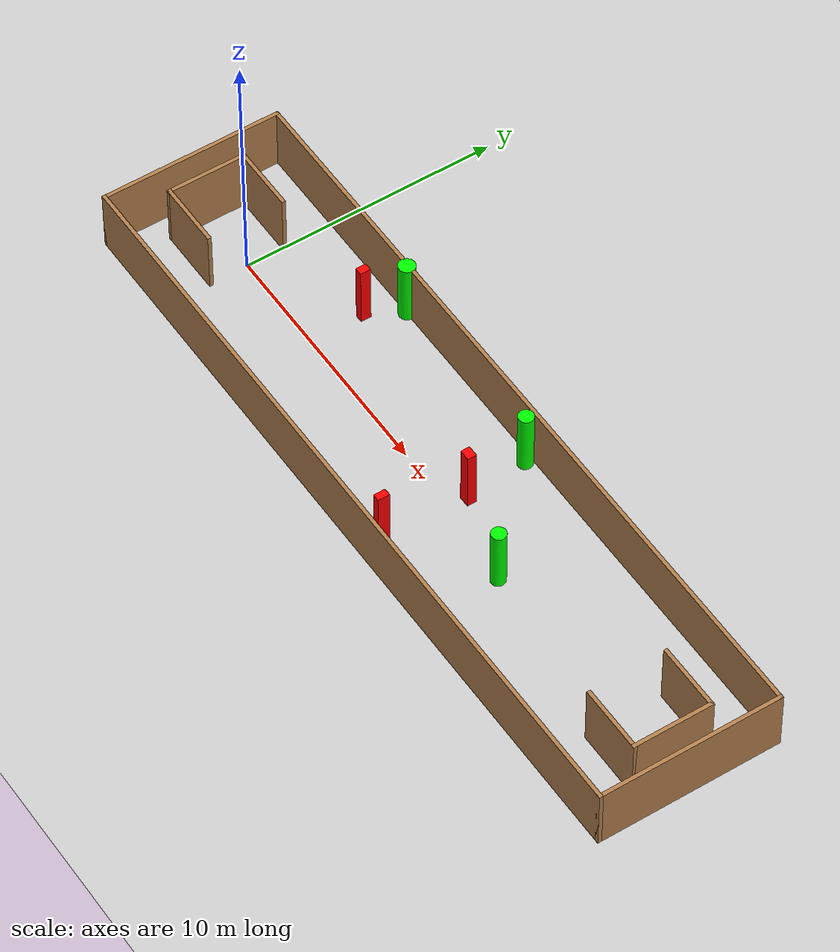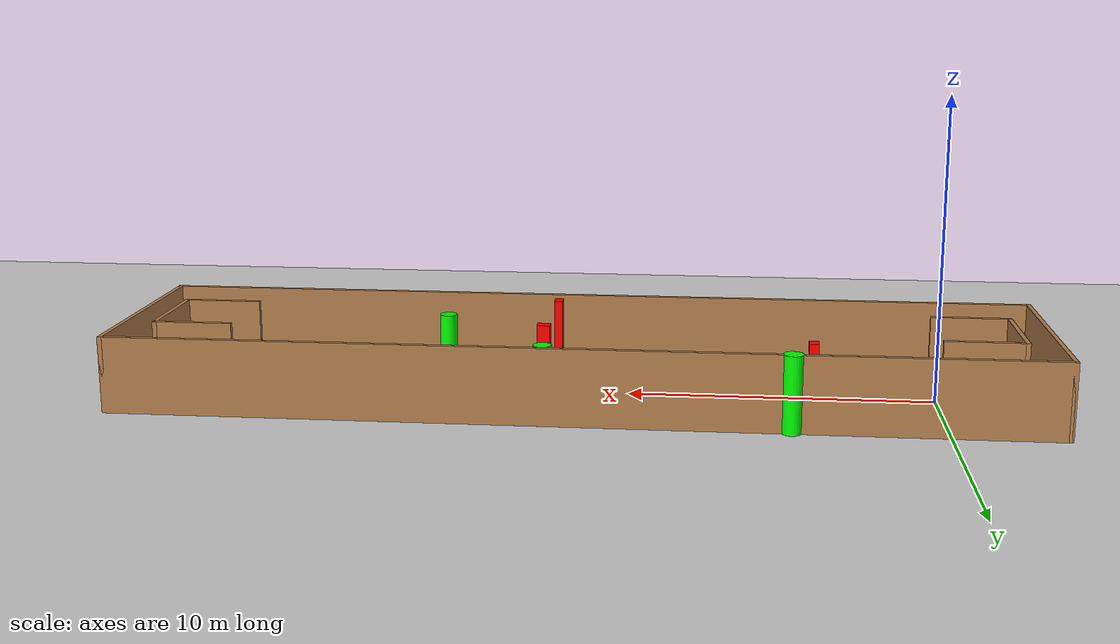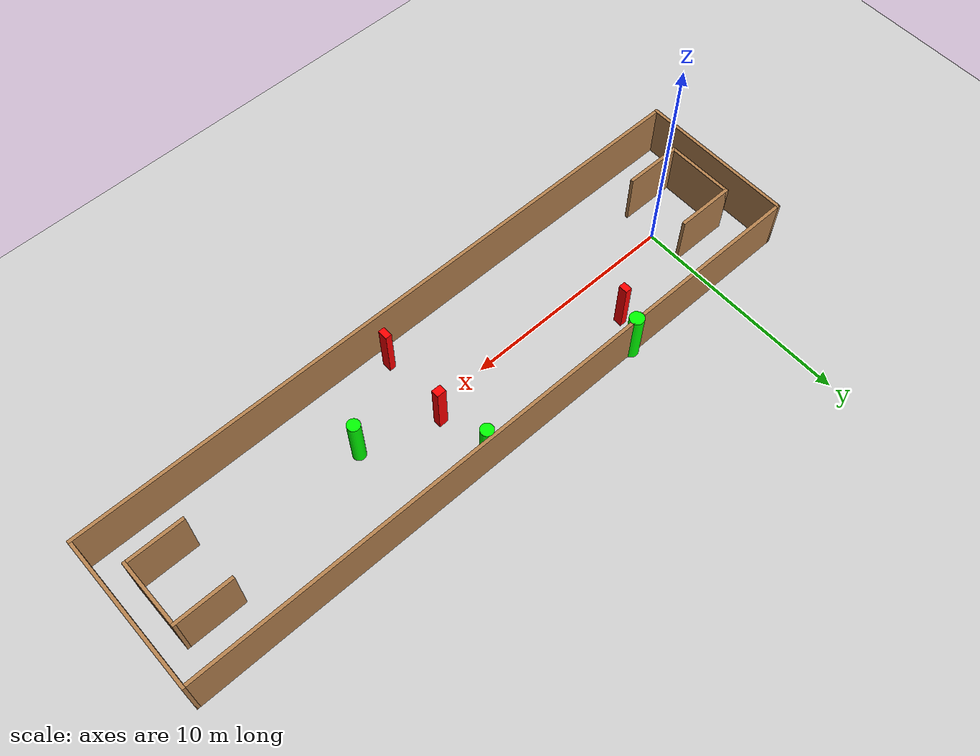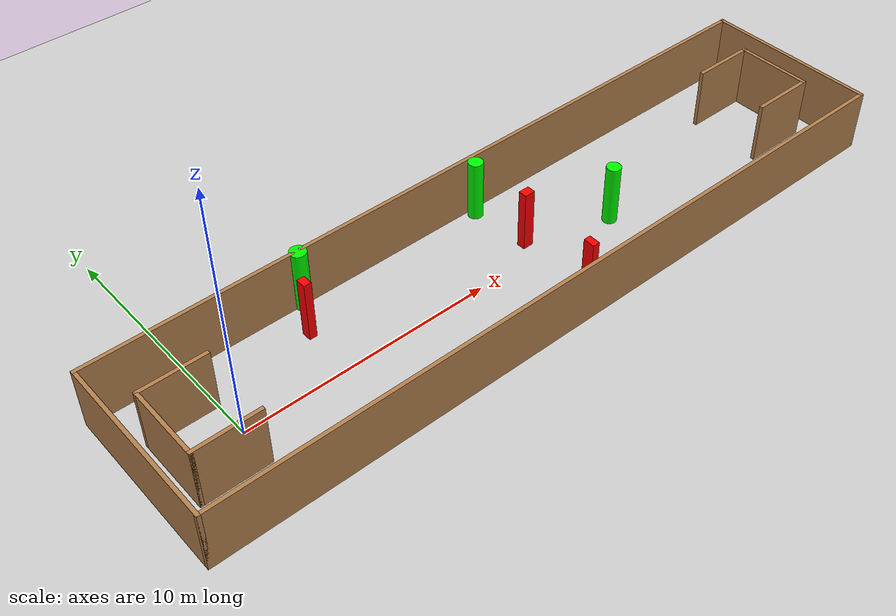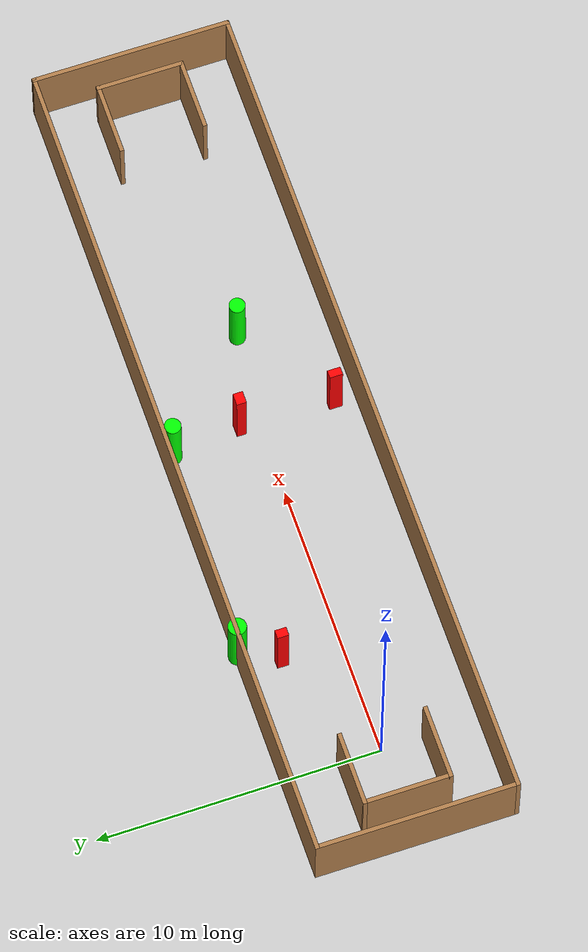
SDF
<sdf version="1.7">
 <world name="default">
  <light name="sun" type="directional">
   <pose>0 0 10 0 -0 0</pose>
   <diffuse>0.8 0.8 0.8 1</diffuse>
   <specular>0.2 0.2 0.2 1</specular>
   <attenuation>
    <range>1000</range>
    <constant>0.9</constant>
    <linear>0.01</linear>
    <quadratic>0.001</quadratic>
   </attenuation>
   <direction>-0.5 0.1 -0.9</direction>
   <spot><inner_angle>0</inner_angle><outer_angle>0</outer_angle><falloff>0</falloff></spot>
  </light>
  <model name="ground_plane">
   <static>1</static>
   <link name="link">
    <collision name="collision">
     <geometry><plane><normal>0 0 1</normal><size>100 100</size></plane></geometry>
     <surface>
      <contact><collide_bitmask>65535</collide_bitmask></contact>
      <friction><ode><mu>100</mu><mu2>50</mu2></ode></friction>
     </surface>
    </collision>
    <visual name="visual">
     <cast_shadows>0</cast_shadows>
     <geometry><plane><normal>0 0 1</normal><size>100 100</size></plane></geometry>
     <material>
      <script><uri>file://media/materials/scripts/gazebo.material</uri><name>Gazebo/Grey</name></script>
     </material>
    </visual>
   </link>
  </model>
  <gravity>0 0 -9.8</gravity>
  <magnetic_field>6e-06 2.3e-05 -4.2e-05</magnetic_field>
  <atmosphere type="adiabatic"/>
  <physics type="ode">
   <max_step_size>0.001</max_step_size>
   <real_time_factor>1</real_time_factor>
   <real_time_update_rate>1000</real_time_update_rate>
  </physics>
  <scene><ambient>0.4 0.4 0.4 1</ambient><background>0.7 0.7 0.7 1</background><shadows>1</shadows></scene>
  <spherical_coordinates>
   <surface_model>EARTH_WGS84</surface_model>
   <latitude_deg>0</latitude_deg>
   <longitude_deg>0</longitude_deg>
   <elevation>0</elevation>
   <heading_deg>0</heading_deg>
  </spherical_coordinates>
  <model name="my_base_walls">
   <link name="Wall_0">
    <collision name="Wall_0_Collision">
     <geometry><box><size>7.15 0.15 2.5</size></box></geometry>
     <pose>0 0 1.25 0 -0 0</pose>
    </collision>
    <visual name="Wall_0_Visual">
     <pose>0 0 1.25 0 -0 0</pose>
     <geometry><box><size>7.15 0.15 2.5</size></box></geometry>
     <material>
      <script><uri>file://media/materials/scripts/gazebo.material</uri><name>Gazebo/Wood</name></script>
      <ambient>1 1 1 1</ambient>
     </material>
     <meta><layer>0</layer></meta>
    </visual>
    <pose>-15 0 0 0 -0 1.5708</pose>
   </link>
   <link name="Wall_10">
    <collision name="Wall_10_Collision">
     <geometry><box><size>2.65 0.15 2.5</size></box></geometry>
     <pose>0 0 1.25 0 -0 0</pose>
    </collision>
    <visual name="Wall_10_Visual">
     <pose>0 0 1.25 0 -0 0</pose>
     <geometry><box><size>2.65 0.15 2.5</size></box></geometry>
     <material>
      <script><uri>file://media/materials/scripts/gazebo.material</uri><name>Gazebo/Wood</name></script>
      <ambient>1 1 1 1</ambient>
     </material>
     <meta><layer>0</layer></meta>
    </visual>
    <pose>-12.75 -1.5 0 0 -0 0</pose>
   </link>
   <link name="Wall_12">
    <collision name="Wall_12_Collision">
     <geometry><box><size>2.65 0.15 2.5</size></box></geometry>
     <pose>0 0 1.25 0 -0 0</pose>
    </collision>
    <visual name="Wall_12_Visual">
     <pose>0 0 1.25 0 -0 0</pose>
     <geometry><box><size>2.65 0.15 2.5</size></box></geometry>
     <material>
      <script><uri>file://media/materials/scripts/gazebo.material</uri><name>Gazebo/Wood</name></script>
      <ambient>1 1 1 1</ambient>
     </material>
     <meta><layer>0</layer></meta>
    </visual>
    <pose>-12.75 1.5 0 0 -0 0</pose>
   </link>
   <link name="Wall_14">
    <collision name="Wall_14_Collision">
     <geometry><box><size>3.15 0.15 2.5</size></box></geometry>
     <pose>0 0 1.25 0 -0 0</pose>
    </collision>
    <visual name="Wall_14_Visual">
     <pose>0 0 1.25 0 -0 0</pose>
     <geometry><box><size>3.15 0.15 2.5</size></box></geometry>
     <material>
      <script><uri>file://media/materials/scripts/gazebo.material</uri><name>Gazebo/Wood</name></script>
      <ambient>1 1 1 1</ambient>
     </material>
     <meta><layer>0</layer></meta>
    </visual>
    <pose>14 0 0 0 -0 -1.5708</pose>
   </link>
   <link name="Wall_15">
    <collision name="Wall_15_Collision">
     <geometry><box><size>2.65 0.15 2.5</size></box></geometry>
     <pose>0 0 1.25 0 -0 0</pose>
    </collision>
    <visual name="Wall_15_Visual">
     <pose>0 0 1.25 0 -0 0</pose>
     <geometry><box><size>2.65 0.15 2.5</size></box></geometry>
     <material>
      <script><uri>file://media/materials/scripts/gazebo.material</uri><name>Gazebo/Wood</name></script>
      <ambient>1 1 1 1</ambient>
     </material>
     <meta><layer>0</layer></meta>
    </visual>
    <pose>12.75 -1.5 0 0 -0 3.14159</pose>
   </link>
   <link name="Wall_17">
    <collision name="Wall_17_Collision">
     <geometry><box><size>2.65 0.15 2.5</size></box></geometry>
     <pose>0 0 1.25 0 -0 0</pose>
    </collision>
    <visual name="Wall_17_Visual">
     <pose>0 0 1.25 0 -0 0</pose>
     <geometry><box><size>2.65 0.15 2.5</size></box></geometry>
     <material>
      <script><uri>file://media/materials/scripts/gazebo.material</uri><name>Gazebo/Wood</name></script>
      <ambient>1 1 1 1</ambient>
     </material>
     <meta><layer>0</layer></meta>
    </visual>
    <pose>12.75 1.5 0 0 -0 3.14159</pose>
   </link>
   <link name="Wall_2">
    <collision name="Wall_2_Collision">
     <geometry><box><size>30.15 0.15 2.5</size></box></geometry>
     <pose>0 0 1.25 0 -0 0</pose>
    </collision>
    <visual name="Wall_2_Visual">
     <pose>0 0 1.25 0 -0 0</pose>
     <geometry><box><size>30.15 0.15 2.5</size></box></geometry>
     <material>
      <script><uri>file://media/materials/scripts/gazebo.material</uri><name>Gazebo/Wood</name></script>
      <ambient>1 1 1 1</ambient>
     </material>
     <meta><layer>0</layer></meta>
    </visual>
    <pose>-0 -3.5 0 0 -0 0</pose>
   </link>
   <link name="Wall_4">
    <collision name="Wall_4_Collision">
     <geometry><box><size>30.15 0.15 2.5</size></box></geometry>
     <pose>0 0 1.25 0 -0 0</pose>
    </collision>
    <visual name="Wall_4_Visual">
     <pose>0 0 1.25 0 -0 0</pose>
     <geometry><box><size>30.15 0.15 2.5</size></box></geometry>
     <material>
      <script><uri>file://media/materials/scripts/gazebo.material</uri><name>Gazebo/Wood</name></script>
      <ambient>1 1 1 1</ambient>
     </material>
     <meta><layer>0</layer></meta>
    </visual>
    <pose>-0 3.5 0 0 -0 0</pose>
   </link>
   <link name="Wall_6">
    <collision name="Wall_6_Collision">
     <geometry><box><size>7.15 0.15 2.5</size></box></geometry>
     <pose>0 0 1.25 0 -0 0</pose>
    </collision>
    <visual name="Wall_6_Visual">
     <pose>0 0 1.25 0 -0 0</pose>
     <geometry><box><size>7.15 0.15 2.5</size></box></geometry>
     <material>
      <script><uri>file://media/materials/scripts/gazebo.material</uri><name>Gazebo/Wood</name></script>
      <ambient>1 1 1 1</ambient>
     </material>
     <meta><layer>0</layer></meta>
    </visual>
    <pose>15 0 0 0 -0 -1.5708</pose>
   </link>
   <link name="Wall_9">
    <collision name="Wall_9_Collision">
     <geometry><box><size>3.15 0.15 2.5</size></box></geometry>
     <pose>0 0 1.25 0 -0 0</pose>
    </collision>
    <visual name="Wall_9_Visual">
     <pose>0 0 1.25 0 -0 0</pose>
     <geometry><box><size>3.15 0.15 2.5</size></box></geometry>
     <material>
      <script><uri>file://media/materials/scripts/gazebo.material</uri><name>Gazebo/Wood</name></script>
      <ambient>1 1 1 1</ambient>
     </material>
     <meta><layer>0</layer></meta>
    </visual>
    <pose>-14 0 0 0 -0 -1.5708</pose>
   </link>
   <static>1</static>
   <pose>11.5 0 0 0 -0 0</pose>
  </model>
  <model name="cylinder1">
   <static>1</static>
   <link name="link">
    <inertial>
     <mass>1</mass>
     <inertia><ixx>0.5</ixx><ixy>0</ixy><ixz>0</ixz><iyy>0.5</iyy><iyz>0</iyz><izz>1</izz></inertia>
    </inertial>
    <collision name="collision">
     <geometry><cylinder><radius>0.2829096562730762</radius><length>2.5</length></cylinder></geometry>
    </collision>
    <visual name="visual">
     <geometry><cylinder><radius>0.2829096562730762</radius><length>2.5</length></cylinder></geometry>
     <material>
      <ambient>0 1 0 1</ambient>
      <diffuse>0 1 0 1</diffuse>
      <specular>0.1 0.1 0.1 1</specular>
      <emissive>0 0 0 0</emissive>
     </material>
    </visual>
   </link>
   <pose>16.069394848740618 -0.34691814177205416 1.25 0 0 0</pose>
  </model>
  <model name="cylinder2">
   <static>1</static>
   <link name="link">
    <inertial>
     <mass>1</mass>
     <inertia><ixx>0.5</ixx><ixy>0</ixy><ixz>0</ixz><iyy>0.5</iyy><iyz>0</iyz><izz>1</izz></inertia>
    </inertial>
    <collision name="collision">
     <geometry><cylinder><radius>0.31986784584057393</radius><length>2.5</length></cylinder></geometry>
    </collision>
    <visual name="visual">
     <geometry><cylinder><radius>0.31986784584057393</radius><length>2.5</length></cylinder></geometry>
     <material>
      <ambient>0 1 0 1</ambient>
      <diffuse>0 1 0 1</diffuse>
      <specular>0.1 0.1 0.1 1</specular>
      <emissive>0 0 0 0</emissive>
     </material>
    </visual>
   </link>
   <pose>4.804495176017205 3.4516295996570534 1.25 0 0 0</pose>
  </model>
  <model name="cylinder3">
   <static>1</static>
   <link name="link">
    <inertial>
     <mass>1</mass>
     <inertia><ixx>0.5</ixx><ixy>0</ixy><ixz>0</ixz><iyy>0.5</iyy><iyz>0</iyz><izz>1</izz></inertia>
    </inertial>
    <collision name="collision">
     <geometry><cylinder><radius>0.2900193195471356</radius><length>2.5</length></cylinder></geometry>
    </collision>
    <visual name="visual">
     <geometry><cylinder><radius>0.2900193195471356</radius><length>2.5</length></cylinder></geometry>
     <material>
      <ambient>0 1 0 1</ambient>
      <diffuse>0 1 0 1</diffuse>
      <specular>0.1 0.1 0.1 1</specular>
      <emissive>0 0 0 0</emissive>
     </material>
    </visual>
   </link>
   <pose>12.485372302309571 3.1524804660703163 1.25 0 0 0</pose>
  </model>
  <model name="box1">
   <static>1</static>
   <link name="link">
    <inertial>
     <mass>1</mass>
     <inertia><ixx>0.083</ixx><ixy>0</ixy><ixz>0</ixz><iyy>0.083</iyy><iyz>0</iyz><izz>0.083</izz></inertia>
    </inertial>
    <collision name="collision">
     <geometry><box><size>0.4298774840372314 0.3483400139272612 2.5</size></box></geometry>
    </collision>
    <visual name="visual">
     <geometry><box><size>0.4298774840372314 0.3483400139272612 2.5</size></box></geometry>
     <material>
      <ambient>1 0 0 1</ambient>
      <diffuse>1 0 0 1</diffuse>
      <specular>0.1 0.1 0.1 1</specular>
      <emissive>0 0 0 0</emissive>
     </material>
    </visual>
    <sensor name="my_contact" type="contact">
     <contact><collision>box_collision</collision><topic>__default_topic__</topic></contact>
    </sensor>
   </link>
   <pose>12.737456000727342 0.6891098897073471 1.25 0 0 0</pose>
  </model>
  <model name="box2">
   <static>1</static>
   <link name="link">
    <inertial>
     <mass>1</mass>
     <inertia><ixx>0.083</ixx><ixy>0</ixy><ixz>0</ixz><iyy>0.083</iyy><iyz>0</iyz><izz>0.083</izz></inertia>
    </inertial>
    <collision name="collision">
     <geometry><box><size>0.2836919652989844 0.4622722887527687 2.5</size></box></geometry>
    </collision>
    <visual name="visual">
     <geometry><box><size>0.2836919652989844 0.4622722887527687 2.5</size></box></geometry>
     <material>
      <ambient>1 0 0 1</ambient>
      <diffuse>1 0 0 1</diffuse>
      <specular>0.1 0.1 0.1 1</specular>
      <emissive>0 0 0 0</emissive>
     </material>
    </visual>
    <sensor name="my_contact" type="contact">
     <contact><collision>box_collision</collision><topic>__default_topic__</topic></contact>
    </sensor>
   </link>
   <pose>12.614441480265562 -2.6697877579022955 1.25 0 0 0</pose>
  </model>
  <model name="box3">
   <static>1</static>
   <link name="link">
    <inertial>
     <mass>1</mass>
     <inertia><ixx>0.083</ixx><ixy>0</ixy><ixz>0</ixz><iyy>0.083</iyy><iyz>0</iyz><izz>0.083</izz></inertia>
    </inertial>
    <collision name="collision">
     <geometry><box><size>0.305079993803132 0.40631014296537493 2.5</size></box></geometry>
    </collision>
    <visual name="visual">
     <geometry><box><size>0.305079993803132 0.40631014296537493 2.5</size></box></geometry>
     <material>
      <ambient>1 0 0 1</ambient>
      <diffuse>1 0 0 1</diffuse>
      <specular>0.1 0.1 0.1 1</specular>
      <emissive>0 0 0 0</emissive>
     </material>
    </visual>
    <sensor name="my_contact" type="contact">
     <contact><collision>box_collision</collision><topic>__default_topic__</topic></contact>
    </sensor>
   </link>
   <pose>4.112714071002102 2.1234360564485986 1.25 0 0 0</pose>
  </model>
 </world>
</sdf>
